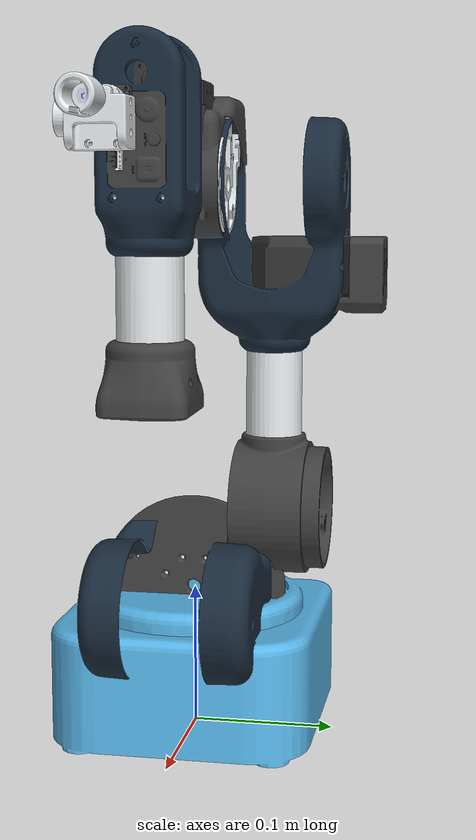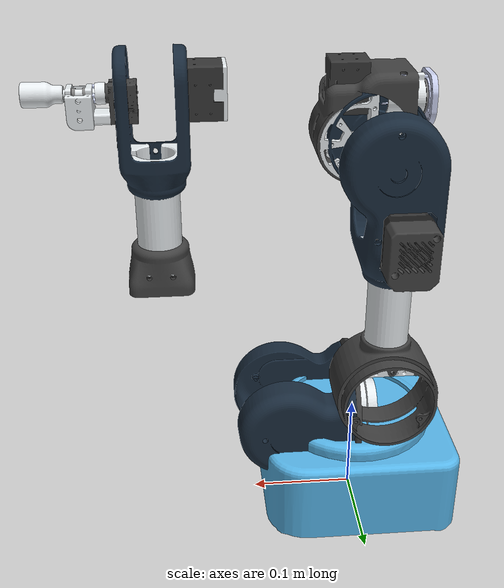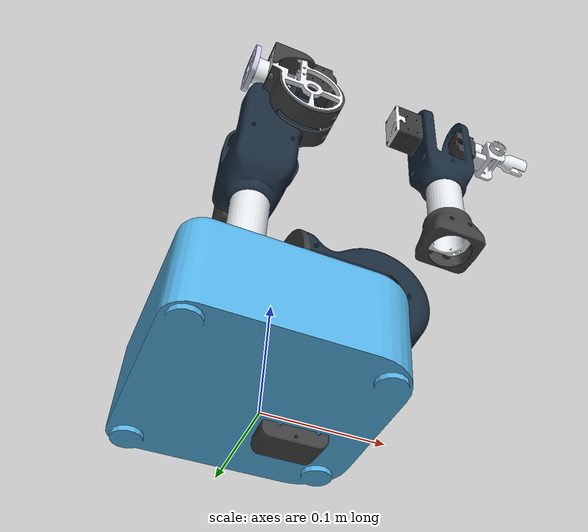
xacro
<?xml version="1.0"?>
<robot xmlns:xacro="http://www.ros.org/wiki/xacro" name="niryo_ned2">
    <!-- Import Properties -->
    <xacro:include filename="$(find niryo_robot_description)/urdf/ned2/niryo_ned2_param.urdf.xacro"/>

    <!-- Links -->

    <link name="world"/>

    <link name="base_link">
        <inertial>
            <origin xyz="-0.008924 0.0001357 0.052392" rpy="0 0 0"/>
            <mass value="0.71142"/>
            <inertia ixx="0.0017" ixy="0.0" ixz="0.0" iyy="0.0017" iyz="0.0" izz="0.0032"/>
        </inertial>
        <visual>
            <origin xyz="0 0 0" rpy="0 0 0"/>
            <geometry>
                <mesh filename="package://niryo_robot_description/meshes/ned2/collada/base_link.dae"/>
            </geometry>
        </visual>
        <collision>
            <origin xyz="0 0 0" rpy="-${PI/2} 0 0"/>
            <geometry>
                <mesh filename="package://niryo_robot_description/meshes/ned2/stl/base_link.stl"/>
            </geometry>
        </collision>
    </link>

    <link name="led_ring_link">
    </link>

    <link name="shoulder_link">
        <inertial>
            <origin xyz="-0.031951 0.0080419 0.030675" rpy="0 0 0"/>
            <mass value="0.35056"/>
            <inertia ixx="0.00023875" ixy="2.3853E-08" ixz="2.0596E-06" iyy="0.00032638" iyz="-8.9319E-07"
                     izz="0.00030089"/>
        </inertial>
        <visual>
            <origin xyz="0 0 0" rpy="0 0 ${-PI/2}"/>
            <geometry>
                <mesh filename="package://niryo_robot_description/meshes/ned2/collada/shoulder_link.dae"/>
            </geometry>
        </visual>
        <collision>
            <origin xyz="0 0 0" rpy="0 0 ${-PI/2}"/>
            <geometry>
                <mesh filename="package://niryo_robot_description/meshes/ned2/stl/shoulder_link.stl"/>
            </geometry>
        </collision>
    </link>

    <link name="arm_link">
        <inertial>
            <origin xyz="-0.00096976 0.086432 0.0038832" rpy="0 ${PI} 0"/>
            <mass value="1.0838"/>
            <inertia ixx="0.008194" ixy="0.00015602" ixz="-3.434E-06" iyy="0.0011945" iyz="-0.00031298" izz="0.007915"/>
        </inertial>
        <visual>
            <origin xyz="0 0 0" rpy="0 ${PI} 0"/>
            <geometry>
                <mesh filename="package://niryo_robot_description/meshes/ned2/collada/arm_link.dae"/>
            </geometry>
        </visual>
        <collision>
            <origin xyz="0 0 0" rpy="0 ${PI} 0"/>
            <geometry>
                <mesh filename="package://niryo_robot_description/meshes/ned2/stl/arm_link.stl"/>
            </geometry>
        </collision>
    </link>

    <link name="elbow_link">
        <inertial>
            <origin xyz="-0.019703 0.037336 -1.7431E-09" rpy="0 ${PI} 0"/>
            <mass value="0.22126"/>
            <inertia ixx="0.00011754" ixy="-1.2314E-05" ixz="-6.2064E-11" iyy="0.00020851" iyz="9.2393E-11"
                     izz="0.00022753"/>
        </inertial>
        <visual>
            <origin xyz="0 0 0" rpy="0 ${PI} ${-PI/2}"/>
            <geometry>
                <mesh filename="package://niryo_robot_description/meshes/ned2/collada/elbow_link.dae"/>
            </geometry>
        </visual>
        <collision>
            <origin xyz="0 0 0" rpy="0 ${PI} ${-PI/2}"/>
            <geometry>
                <mesh filename="package://niryo_robot_description/meshes/ned2/stl/elbow_link.stl"/>
            </geometry>
        </collision>
    </link>

    <link name="forearm_link">
        <inertial>
            <origin xyz="-0.0049532 7.8351E-06 0.08106" rpy="0 0 0"/>
            <mass value="0.35686"/>
            <inertia ixx="0.0013664" ixy="-9.6367E-08" ixz="0.00013594" iyy="0.0014781" iyz="-1.4596E-07"
                     izz="0.00023715"/>
        </inertial>
        <visual>
            <origin xyz="0 0 0" rpy="0 0 ${-PI/2}"/>
            <geometry>
                <mesh filename="package://niryo_robot_description/meshes/ned2/collada/forearm_link.dae"/>
            </geometry>
        </visual>
        <collision>
            <origin xyz="0 0 0" rpy="0 0 ${-PI/2}"/>
            <geometry>
                <mesh filename="package://niryo_robot_description/meshes/ned2/stl/forearm_link.stl"/>
            </geometry>
        </collision>
    </link>

    <link name="wrist_link">
        <inertial>
            <origin xyz="-0.019666 0.037312 0.0" rpy="0 0 0"/>
            <mass value="0.22126"/>
            <inertia ixx="0.0015" ixy="0.0" ixz="0.0" iyy="0.0015" iyz="0.0" izz="0.0015"/>
        </inertial>
        <visual>
            <origin xyz="0 0 0"
                    rpy="0 0 ${-PI/2}"/>
            <geometry>
                <mesh filename="package://niryo_robot_description/meshes/ned2/collada/wrist_link.dae"/>
            </geometry>
        </visual>
        <collision>
            <origin xyz="0 0 0"
                    rpy="0 0 ${-PI/2}"/>
            <geometry>
                <mesh filename="package://niryo_robot_description/meshes/ned2/stl/wrist_link.stl"/>
            </geometry>
        </collision>
    </link>

    <link name="hand_link">
        <inertial>
            <origin xyz="0 0 0.009" rpy="0 0 0"/>
            <mass value="0.0070027"/>
            <inertia ixx="0.0015" ixy="0.0" ixz="0.0" iyy="0.0015" iyz="0.0" izz="0.0015"/>
        </inertial>
        <visual>
            <origin xyz="0 0 0" rpy="0 0 ${-PI/2}"/>
            <geometry>
                <mesh filename="package://niryo_robot_description/meshes/ned2/collada/hand_link.dae"/>
            </geometry>
        </visual>
        <collision>
            <origin xyz="0 0 0" rpy="0 0 ${-PI/2}"/>
            <geometry>
                <mesh filename="package://niryo_robot_description/meshes/ned2/stl/hand_link.stl"/>
            </geometry>
        </collision>
    </link>

    <link name="tool_link">
    </link>

    <!-- Joints -->

    <joint name="joint_world" type="fixed">
        <parent link="world"/>
        <child link="base_link"/>
        <origin xyz="0 0 0" rpy="0 0 0"/>
    </joint>

    <joint name="joint_1" type="revolute">
        <origin xyz="0 0 0.1013" rpy="0 0 0"/>
        <parent link="base_link"/>
        <child link="shoulder_link"/>
        <axis xyz="0 0 1"/>
        <limit effort="10.0" velocity="10.0" lower="${(limit_low_shoulder_rotation + safety_pos_margin) * deg_to_rad}"
               upper="${(limit_up_shoulder_rotation - safety_pos_margin) * deg_to_rad}"/>
    </joint>

    <joint name="joint_2" type="revolute">
        <origin xyz="0 0 0.065" rpy="${PI/2} 0 0"/>
        <parent link="shoulder_link"/>
        <child link="arm_link"/>
        <axis xyz="0 0 1"/>
        <limit effort="10.0" velocity="8.0" lower="${(limit_low_arm_rotation + safety_pos_margin) * deg_to_rad}"
               upper="${(limit_up_arm_rotation - safety_pos_margin) * deg_to_rad}"/>

    </joint>

    <joint name="joint_3" type="revolute">
        <origin xyz="0.012 0.221 0" rpy="0 0 ${PI/2}"/>
        <parent link="arm_link"/>
        <child link="elbow_link"/>
        <axis xyz="0 0 1"/>
        <limit effort="7.0" velocity="8.0" lower="${(limit_low_elbow_rotation + safety_pos_margin) * deg_to_rad}"
               upper="${(limit_up_elbow_rotation - safety_pos_margin) * deg_to_rad}"/>

    </joint>

    <joint name="joint_4" type="revolute">
        <origin xyz="0.0325 -0.065 0" rpy="${PI/2} 0 0"/>
        <parent link="elbow_link"/>
        <child link="forearm_link"/>
        <axis xyz="0 0 1"/>
        <limit effort="7.0" velocity="2.0" lower="${(limit_low_forearm_rotation + safety_pos_margin) * deg_to_rad}"
               upper="${(limit_up_forearm_rotation - safety_pos_margin) * deg_to_rad}"/>
    </joint>

    <joint name="joint_5" type="revolute">
        <origin xyz="0 0 0.17" rpy="${-PI/2} 0 0"/>
        <parent link="forearm_link"/>
        <child link="wrist_link"/>
        <axis xyz="0 0 1"/>
        <limit effort="6.0" velocity="2.0" lower="${(limit_low_wrist_rotation + safety_pos_margin) * deg_to_rad}"
               upper="${(limit_up_wrist_rotation - safety_pos_margin) * deg_to_rad}"/>

    </joint>

    <joint name="joint_6" type="revolute">
        <origin xyz="0.00925 -0.0197 0" rpy="${PI/2} 0 0"/>
        <parent link="wrist_link"/>
        <child link="hand_link"/>
        <axis xyz="0 0 1"/>
        <limit effort="5.0" velocity="2.0" lower="${(limit_low_hand_rotation + safety_pos_margin) * deg_to_rad}"
               upper="${(limit_up_hand_rotation - safety_pos_margin) * deg_to_rad}"/>
    </joint>

    <joint name="hand_tool_joint" type="fixed">
        <parent link="hand_link"/>
        <child link="tool_link"/>
        <origin xyz="0 0 ${distance_hand_tool}" rpy="${PI} -${PI/2} 0"/>
    </joint>

    <joint name="joint_led_ring" type="fixed">
        <parent link="world"/>
        <child link="led_ring_link"/>
        <origin xyz="0 0 0.0923" rpy="0 0 0"/>
    </joint>

</robot>

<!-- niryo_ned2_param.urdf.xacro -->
<robot xmlns:xacro="http://www.ros.org/wiki/xacro" name="niryo_ned2">
    <xacro:property name="PI" value="3.14159265359"/>
    <xacro:property name="deg_to_rad" value="${PI/180}"/>

    <!-- Properties -->

    <xacro:property name="distance_hand_tool" value="0.0285"/>

    <xacro:property name="limit_low_shoulder_rotation" value="-171.88"/>
    <xacro:property name="limit_up_shoulder_rotation" value="171.88"/>
    <xacro:property name="limit_low_arm_rotation" value="-105.0"/>
    <xacro:property name="limit_up_arm_rotation" value="34.96"/>
    <xacro:property name="limit_low_elbow_rotation" value="-76.78"/>
    <xacro:property name="limit_up_elbow_rotation" value="85.5"/>
    <xacro:property name="limit_low_forearm_rotation" value="-119.75"/>
    <xacro:property name="limit_up_forearm_rotation" value="119.75"/>
    <xacro:property name="limit_low_wrist_rotation" value="-110.01"/>
    <xacro:property name="limit_up_wrist_rotation" value="110.17"/>
    <xacro:property name="limit_low_hand_rotation" value="-144.96"/>
    <xacro:property name="limit_up_hand_rotation" value="144.96"/>

    <xacro:property name="safety_pos_margin" value="0.0"/>

</robot>
